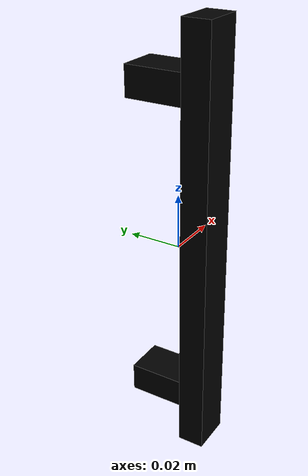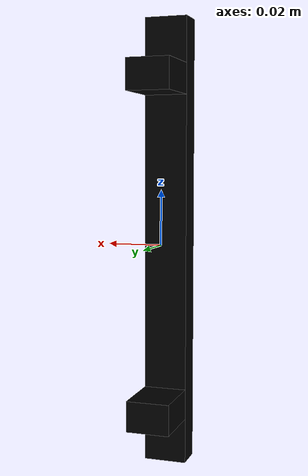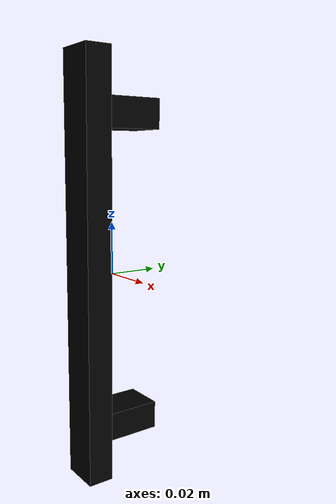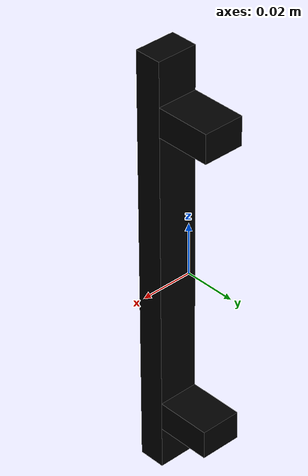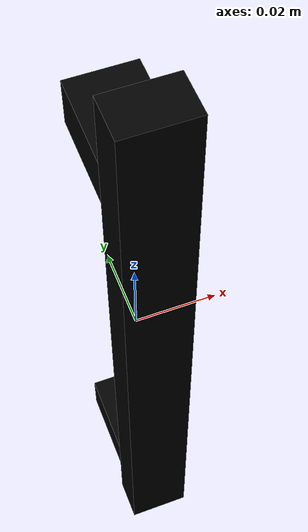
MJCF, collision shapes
<?xml version="1.0" ?>
<mujoco model="model">
    <compiler angle="radian"/>
    <asset>
        <mesh file="visuals/CabinetHandle009.obj" name="mesh"/>
        <texture file="visuals/T_BC001.png" name="tex" type="2d"/>
        <material name="mat" rgba="1 1 1 1.0" texture="tex" shininess="5" specular="0.7"/>
    </asset>
    <default>
        <default class="visual">
            <geom conaffinity="0" contype="0" group="1" type="mesh"/>
        </default>
        <default class="collision">
            <geom group="0" rgba="0 0 0 0"/>
        </default>
        <default class="spawn">
            <geom group="0" rgba="0 0 0 0" contype="0" conaffinity="0"/>
            <site group="0" rgba="0 0 0 0"/>
        </default>
    </default>
    <worldbody>
        <body>
            <body name="object">
                <geom mesh="mesh" type="mesh" solimp="0.998 0.998 0.001" solref="0.001 1" density="100" friction="0.95 0.3 0.1" class="visual" material="mat"/>
                <geom class="collision" type="box" pos="0.0 -0.010422936640679836 0.0" size="0.007849609479308128 0.005206269212067127 0.0823536366224289" quat="1.0 0.0 0.0 0.0"/>
                <geom class="collision" type="box" pos="-1.3639054384044915e-17 0.005344139412045479 0.06005767360329628" size="0.007849607616662979 0.010579355992376804 0.005595743656158447" quat="1.0 0.0 0.0 0.0" name="handle_connector"/>
                <geom class="collision" type="box" pos="-1.3639054384044915e-17 0.005344139412045479 -0.05996280536055565" size="0.007849608547985554 0.010579357855021954 0.005595744587481022" quat="1.0 0.0 0.0 0.0"/>
            </body>
        </body>
    </worldbody>
    <actuator/>
</mujoco>
